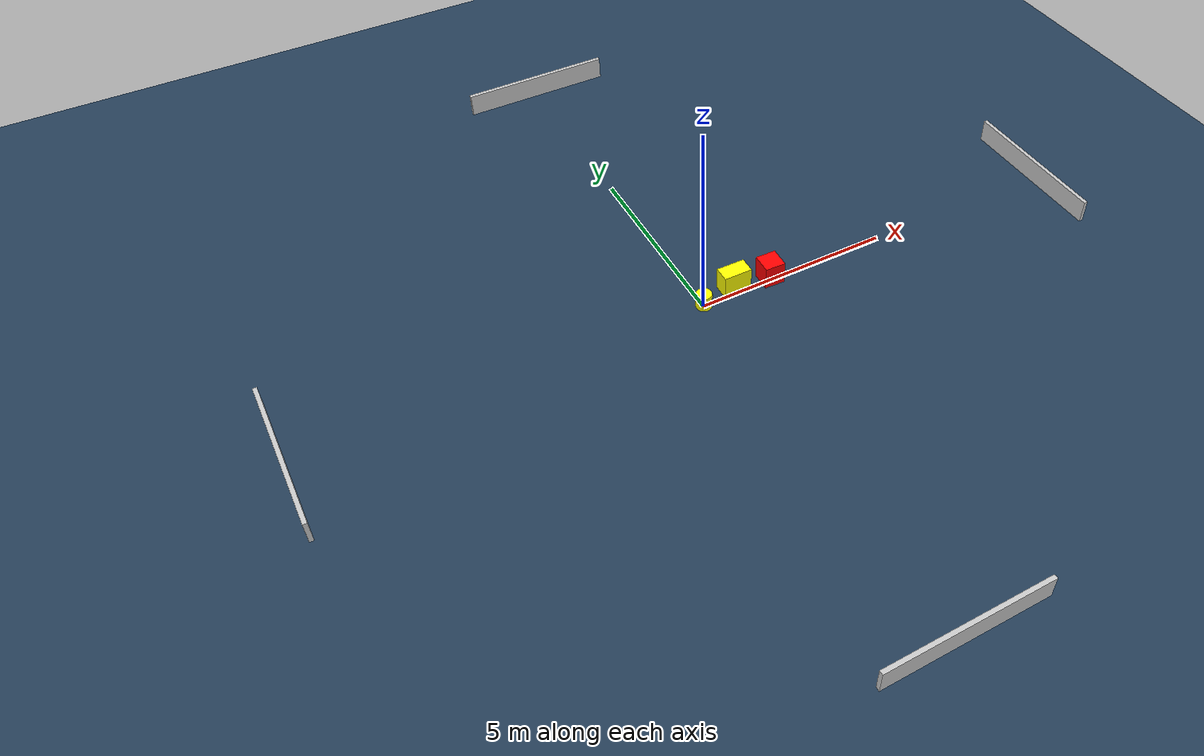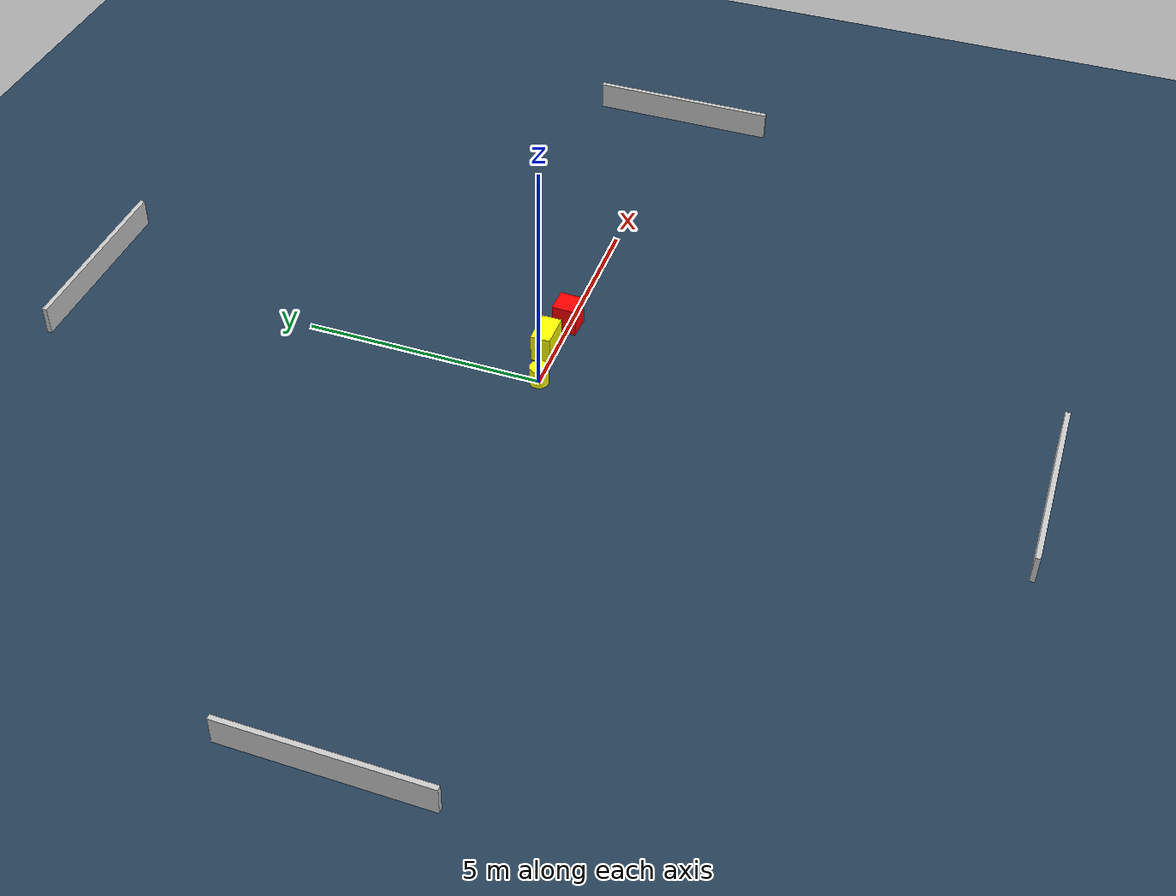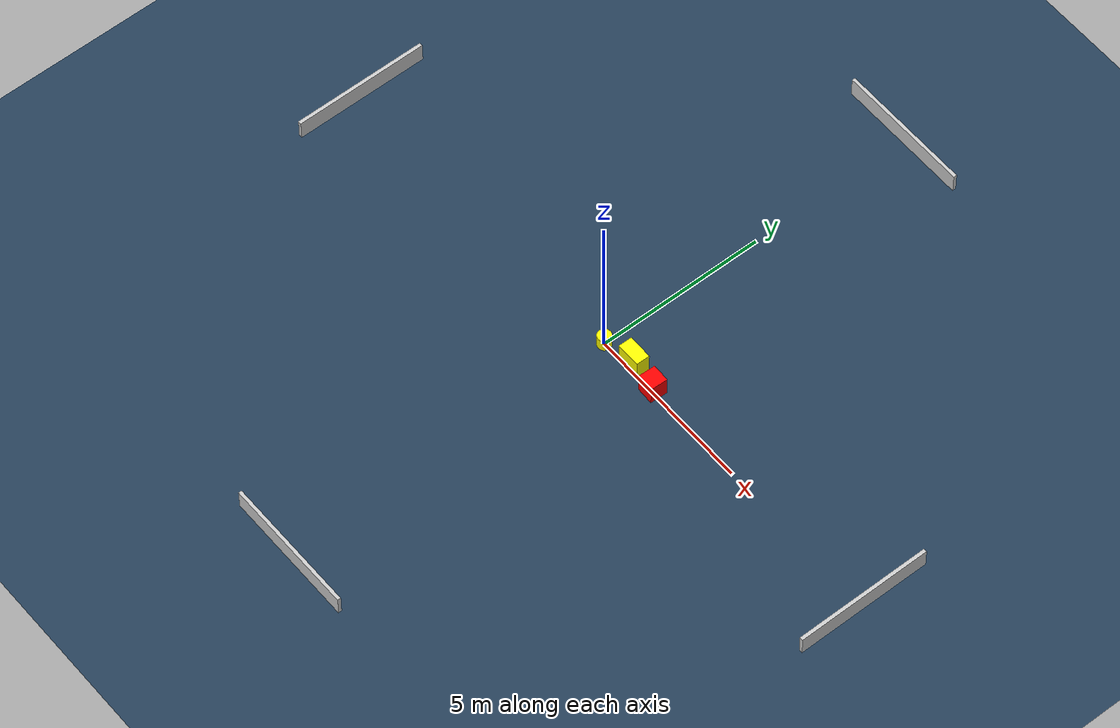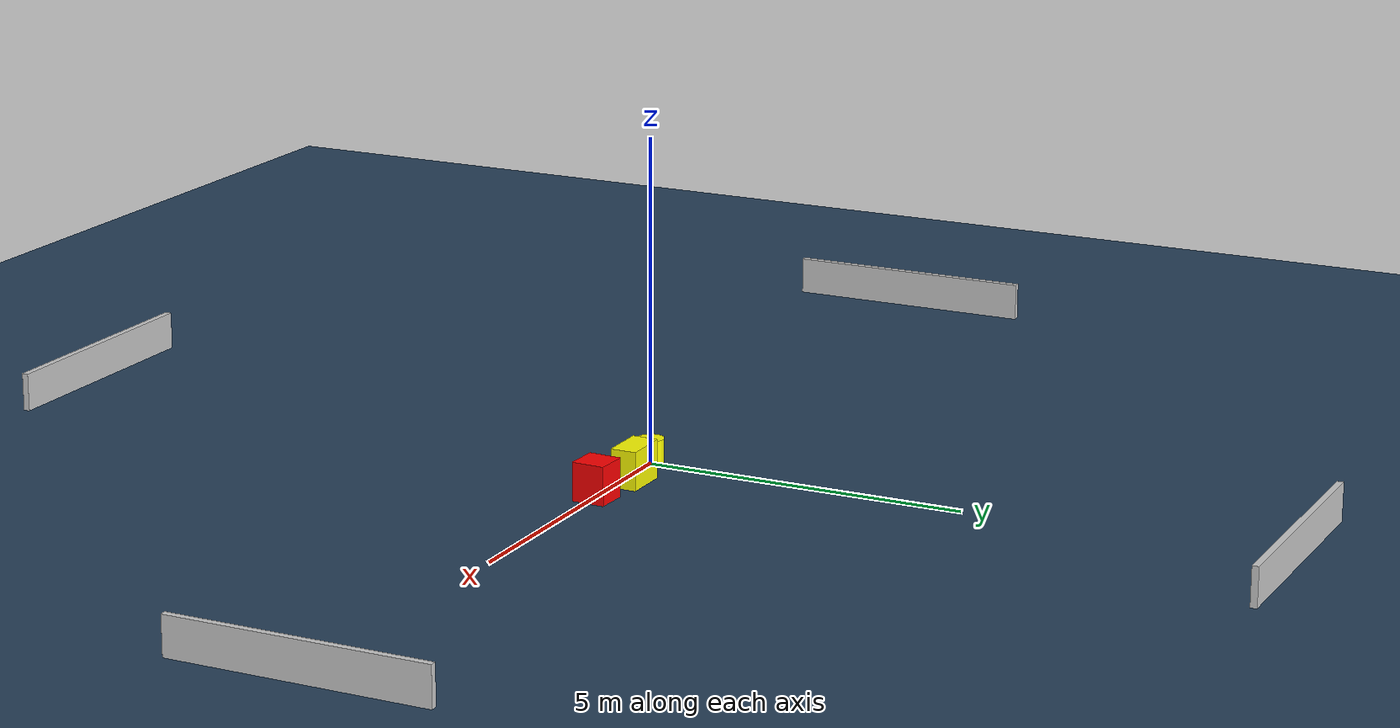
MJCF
<?xml version="1.0" ?>
<mujoco model="generated_environment">
  <option timestep="0.01" integrator="RK4" cone="elliptic"/>
  <default>
    <geom density="1"/>
  </default>
  <asset>
    <texture builtin="gradient" height="3072" name="skybox" rgb1="0.3 0.5 0.7" rgb2="0 0 0" type="skybox" width="512"/>
    <texture builtin="checker" height="300" name="groundplane" rgb1="0.2 0.3 0.4" rgb2="0.1 0.2 0.3" type="2d" width="300"/>
    <material name="groundplane" reflectance="0.2" texrepeat="5 5" texture="groundplane"/>
  </asset>
  <worldbody>
    <light dir="0 0 -1" directional="true" pos="0 0 1.5"/>
    <geom condim="3" friction="0.5 0.005 0.001" material="groundplane" name="floor" pos="0 0 0" size="0 0 0.05" type="plane"/>
    <body name="walls">
      <geom name="wall_1" condim="4" pos="-10.0 0.0 0.3" rgba="0.800000011920929 0.800000011920929 0.800000011920929 1.0" size="0.05 2.0 0.3" type="box"/>
      <geom name="wall_2" condim="4" pos="10.0 0.0 0.3" rgba="0.800000011920929 0.800000011920929 0.800000011920929 1.0" size="0.05 2.0 0.3" type="box"/>
      <geom name="wall_3" condim="4" pos="0.0 -10.0 0.3" rgba="0.800000011920929 0.800000011920929 0.800000011920929 1.0" size="2.0 0.05 0.3" type="box"/>
      <geom name="wall_4" condim="4" pos="0.0 10.0 0.3" rgba="0.800000011920929 0.800000011920929 0.800000011920929 1.0" size="2.0 0.05 0.3" type="box"/>
    </body>
    <body name="robot">
      <joint name="joint_x" type="slide" pos="0 0 0" axis="1 0 0"/>
      <joint name="joint_y" type="slide" pos="0 0 0" axis="0 1 0"/>
      <geom name="robot" type="cylinder" pos="0.0 0.0 0.2" size="0.2 0.2 0.0" mass="5.0" friction="1.0 0.005 0.0001" condim="4" rgba="1.0 1.0 0.0 1.0"/>
    </body>
    <body name="obstacle_1_movable">
      <geom name="obstacle_1_movable" condim="4" pos="0.9414530055915049 0.19509200358586481 0.3" euler="0 0 359.5720733384949" friction="0.0 0.005 0.001" rgba="1.0 1.0 0.0 1.0" size="0.3605398507286973 0.20188218586067766 0.3" type="box" mass="0.1"/>
      <joint type="free"/>
    </body>
    <body name="obstacle_2_static">
      <geom name="obstacle_2_static" condim="4" pos="1.8643591999671765 0.04570067568826839 0.3" euler="0 0 267.6084859592374" friction="0.0 0.005 0.001" rgba="1.0 0.0 0.0 1.0" size="0.25596102279489064 0.25899175709926825 0.3" type="box"/>
    </body>
  </worldbody>
  <actuator>
    <motor name="actuator_x" joint="joint_x" gear="1" ctrlrange="-1 1"/>
    <motor name="actuator_y" joint="joint_y" gear="1" ctrlrange="-1 1"/>
  </actuator>
</mujoco>
